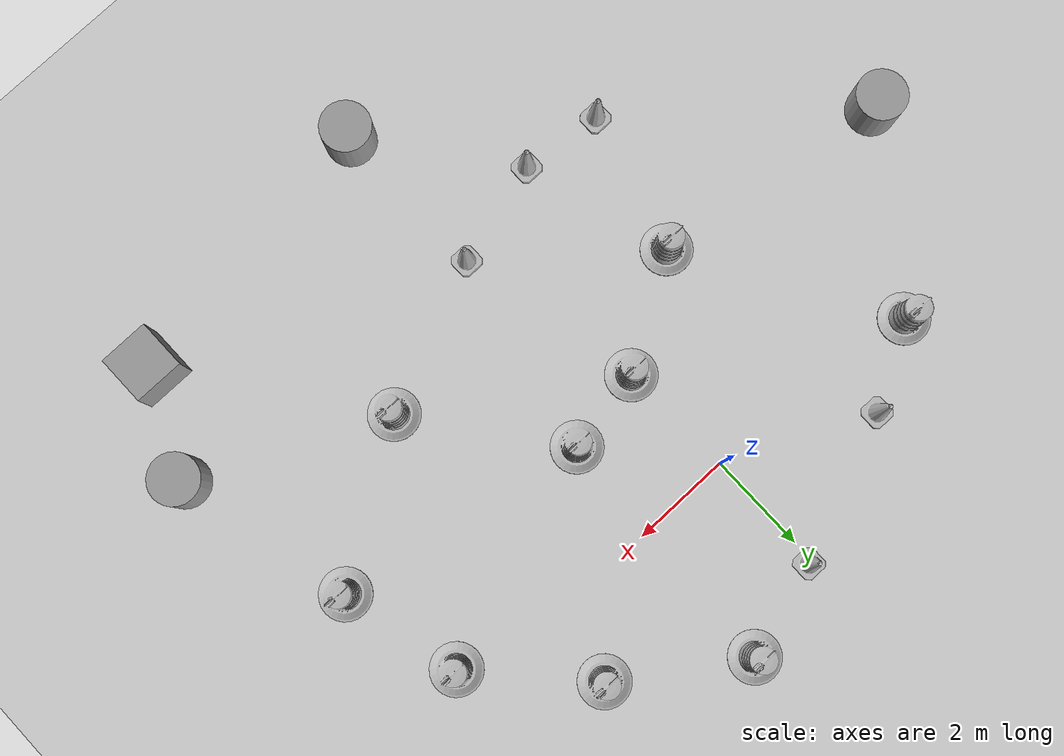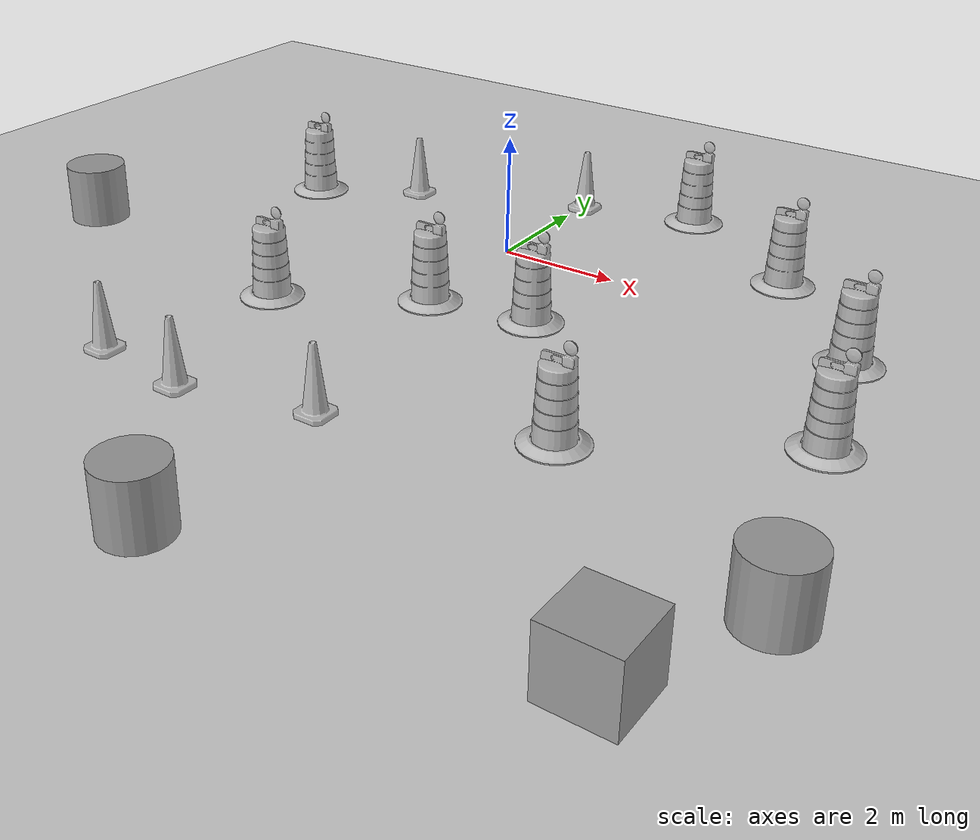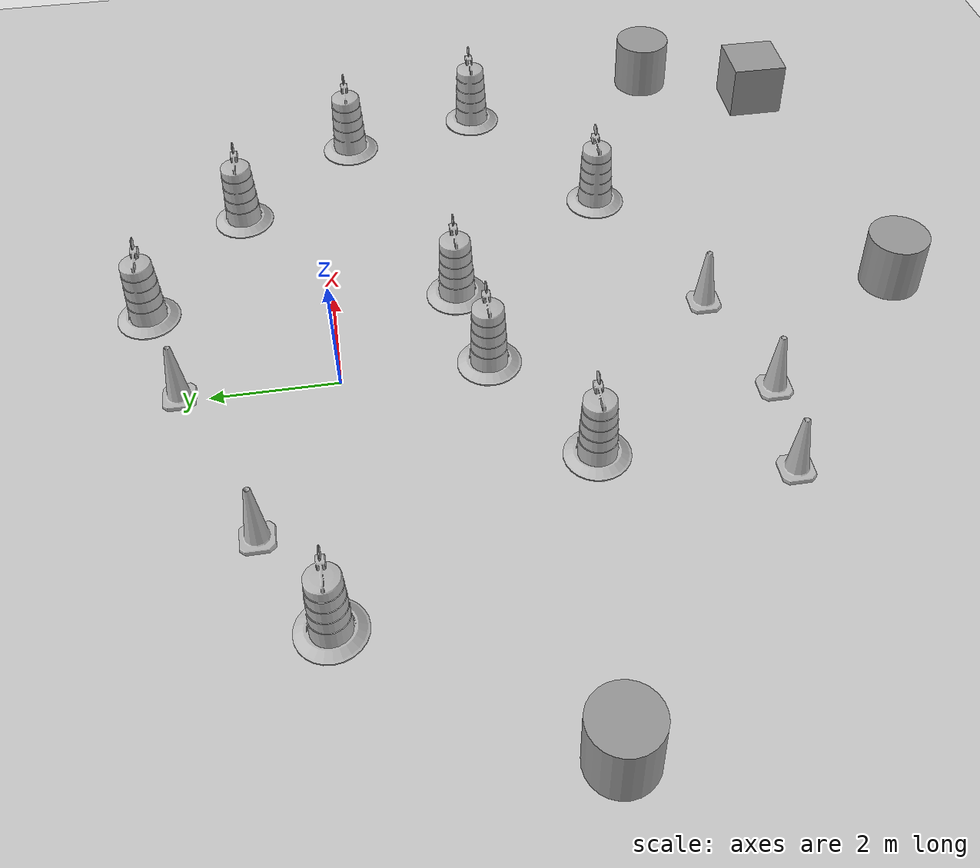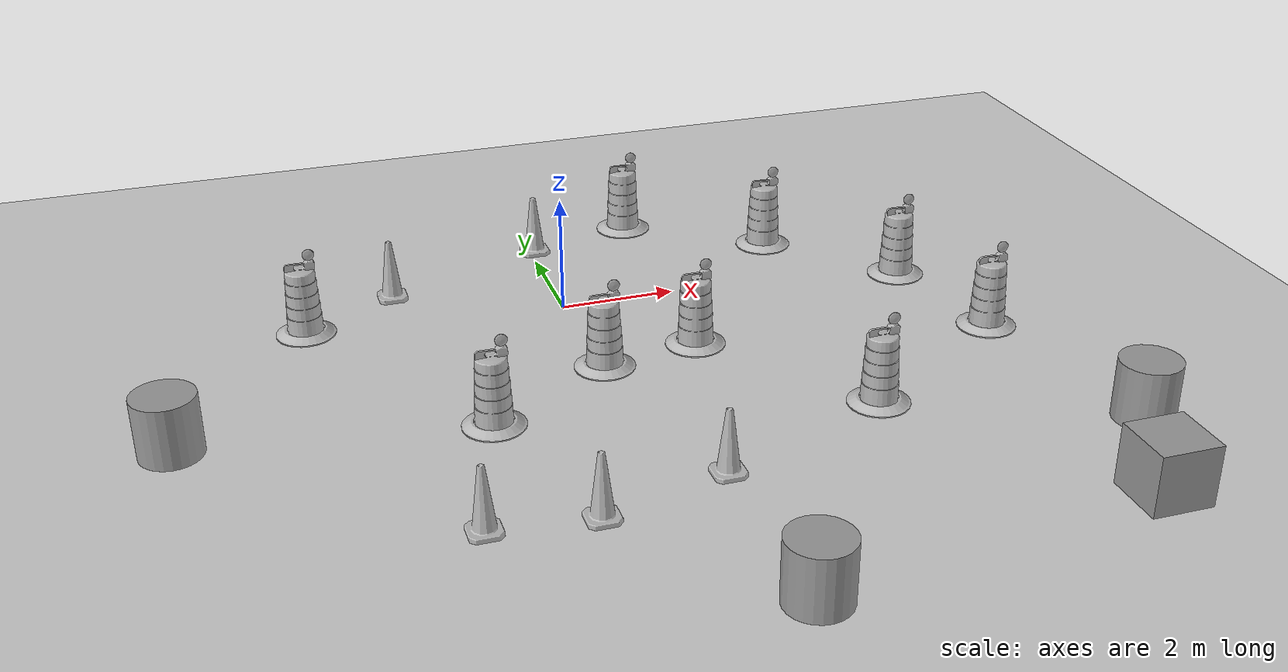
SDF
<sdf version="1.7">
 <world name="default">
  <light name="sun" type="directional">
   <pose>0 0 10 0 -0 0</pose>
   <diffuse>0.8 0.8 0.8 1</diffuse>
   <specular>0.2 0.2 0.2 1</specular>
   <attenuation>
    <range>1000</range>
    <constant>0.9</constant>
    <linear>0.01</linear>
    <quadratic>0.001</quadratic>
   </attenuation>
   <direction>-0.5 0.1 -0.9</direction>
   <spot><inner_angle>0</inner_angle><outer_angle>0</outer_angle><falloff>0</falloff></spot>
  </light>
  <model name="ground_plane">
   <static>1</static>
   <link name="link">
    <collision name="collision">
     <geometry><plane><normal>0 0 1</normal><size>100 100</size></plane></geometry>
     <surface>
      <contact><collide_bitmask>65535</collide_bitmask></contact>
      <friction><ode><mu>100</mu><mu2>50</mu2></ode></friction>
     </surface>
    </collision>
    <visual name="visual">
     <cast_shadows>0</cast_shadows>
     <geometry><plane><normal>0 0 1</normal><size>100 100</size></plane></geometry>
     <material>
      <script><uri>file://media/materials/scripts/gazebo.material</uri><name>Gazebo/Grey</name></script>
     </material>
    </visual>
   </link>
  </model>
  <gravity>0 0 -9.8</gravity>
  <magnetic_field>6e-06 2.3e-05 -4.2e-05</magnetic_field>
  <atmosphere type="adiabatic"/>
  <physics type="ode">
   <max_step_size>0.001</max_step_size>
   <real_time_factor>1</real_time_factor>
   <real_time_update_rate>1000</real_time_update_rate>
  </physics>
  <scene><ambient>0.4 0.4 0.4 1</ambient><background>0.7 0.7 0.7 1</background><shadows>1</shadows></scene>
  <audio><device>default</device></audio>
  <spherical_coordinates>
   <surface_model>EARTH_WGS84</surface_model>
   <latitude_deg>0</latitude_deg>
   <longitude_deg>0</longitude_deg>
   <elevation>0</elevation>
   <heading_deg>0</heading_deg>
  </spherical_coordinates>
  <model name="Construction Cone">
   <link name="link">
    <collision name="collision">
     <geometry>
      <mesh><scale>10 10 10</scale><uri>model://construction_cone/meshes/construction_cone.dae</uri></mesh>
     </geometry>
    </collision>
    <visual name="visual">
     <geometry>
      <mesh><scale>10 10 10</scale><uri>model://construction_cone/meshes/construction_cone.dae</uri></mesh>
     </geometry>
    </visual>
    <inertial>
     <inertia><ixx>1</ixx><ixy>0</ixy><ixz>0</ixz><iyy>1</iyy><iyz>0</iyz><izz>1</izz></inertia>
     <mass>1</mass>
    </inertial>
   </link>
   <pose>-2.80355 1.3064 -0 0 -1e-06 0</pose>
  </model>
  <model name="unit_cylinder_3">
   <pose>-6.80915 -2.93864 0.499994 -3e-06 -1e-06 -0</pose>
   <link name="link">
    <inertial>
     <mass>1</mass>
     <inertia><ixx>0.145833</ixx><ixy>0</ixy><ixz>0</ixz><iyy>0.145833</iyy><iyz>0</iyz><izz>0.125</izz></inertia>
    </inertial>
    <collision name="collision">
     <geometry><cylinder><radius>0.5</radius><length>1</length></cylinder></geometry>
    </collision>
    <visual name="visual">
     <geometry><cylinder><radius>0.5</radius><length>1</length></cylinder></geometry>
     <material>
      <script><name>Gazebo/Grey</name><uri>file://media/materials/scripts/gazebo.material</uri></script>
     </material>
    </visual>
   </link>
  </model>
  <model name="unit_cylinder_4">
   <pose>7.53799 -6.51764 0.499994 -3e-06 -1e-06 -0</pose>
   <link name="link">
    <inertial>
     <mass>1</mass>
     <inertia><ixx>0.145833</ixx><ixy>0</ixy><ixz>0</ixz><iyy>0.145833</iyy><iyz>0</iyz><izz>0.125</izz></inertia>
    </inertial>
    <collision name="collision">
     <geometry><cylinder><radius>0.5</radius><length>1</length></cylinder></geometry>
    </collision>
    <visual name="visual">
     <geometry><cylinder><radius>0.5</radius><length>1</length></cylinder></geometry>
     <material>
      <script><name>Gazebo/Grey</name><uri>file://media/materials/scripts/gazebo.material</uri></script>
     </material>
    </visual>
   </link>
  </model>
  <model name="unit_box_5">
   <pose>6.5729 -8.51439 0.499995 -1e-05 0 0</pose>
   <link name="link">
    <inertial>
     <mass>1</mass>
     <inertia>
      <ixx>0.166667</ixx>
      <ixy>0</ixy>
      <ixz>0</ixz>
      <iyy>0.166667</iyy>
      <iyz>0</iyz>
      <izz>0.166667</izz>
     </inertia>
    </inertial>
    <collision name="collision"><geometry><box><size>1 1 1</size></box></geometry></collision>
    <visual name="visual">
     <geometry><box><size>1 1 1</size></box></geometry>
     <material>
      <script><name>Gazebo/Grey</name><uri>file://media/materials/scripts/gazebo.material</uri></script>
     </material>
    </visual>
   </link>
  </model>
  <model name="unit_cylinder_5">
   <pose>0.903719 -9.27646 0.499994 -4e-06 -3e-06 -0</pose>
   <link name="link">
    <inertial>
     <mass>1</mass>
     <inertia><ixx>0.145833</ixx><ixy>0</ixy><ixz>0</ixz><iyy>0.145833</iyy><iyz>0</iyz><izz>0.125</izz></inertia>
    </inertial>
    <collision name="collision">
     <geometry><cylinder><radius>0.5</radius><length>1</length></cylinder></geometry>
    </collision>
    <visual name="visual">
     <geometry><cylinder><radius>0.5</radius><length>1</length></cylinder></geometry>
     <material>
      <script><name>Gazebo/Grey</name><uri>file://media/materials/scripts/gazebo.material</uri></script>
     </material>
    </visual>
   </link>
  </model>
  <model name="Construction Cone_clone_0">
   <link name="link">
    <collision name="collision">
     <geometry>
      <mesh><scale>10 10 10</scale><uri>model://construction_cone/meshes/construction_cone.dae</uri></mesh>
     </geometry>
    </collision>
    <visual name="visual">
     <geometry>
      <mesh><scale>10 10 10</scale><uri>model://construction_cone/meshes/construction_cone.dae</uri></mesh>
     </geometry>
    </visual>
    <inertial>
     <inertia><ixx>1</ixx><ixy>0</ixy><ixz>0</ixz><iyy>1</iyy><iyz>0</iyz><izz>1</izz></inertia>
     <mass>1</mass>
    </inertial>
   </link>
   <pose>0.08782 2.45308 -0 0 -0 0</pose>
  </model>
  <model name="Construction Barrel">
   <link name="link">
    <inertial>
     <pose>0 0 0.4 0 -0 0</pose>
     <mass>500</mass>
     <inertia><ixx>51.2096</ixx><iyy>51.2096</iyy><izz>25</izz><ixy>0</ixy><ixz>0</ixz><iyz>0</iyz></inertia>
    </inertial>
    <collision name="collision">
     <geometry><mesh><uri>model://construction_barrel/meshes/construction_barrel.dae</uri></mesh></geometry>
    </collision>
    <visual name="visual">
     <geometry><mesh><uri>model://construction_barrel/meshes/construction_barrel.dae</uri></mesh></geometry>
    </visual>
   </link>
   <pose>0.07625 -2.34128 0 0 0 -0.000483</pose>
  </model>
  <model name="Construction Barrel_clone">
   <link name="link">
    <inertial>
     <pose>0 0 0.4 0 -0 0</pose>
     <mass>500</mass>
     <inertia><ixx>51.2096</ixx><iyy>51.2096</iyy><izz>25</izz><ixy>0</ixy><ixz>0</ixz><iyz>0</iyz></inertia>
    </inertial>
    <collision name="collision">
     <geometry><mesh><uri>model://construction_barrel/meshes/construction_barrel.dae</uri></mesh></geometry>
    </collision>
    <visual name="visual">
     <geometry><mesh><uri>model://construction_barrel/meshes/construction_barrel.dae</uri></mesh></geometry>
    </visual>
   </link>
   <pose>-2.06441 -3.63361 -1e-06 4e-06 -2e-06 -4.2e-05</pose>
  </model>
  <model name="Construction Barrel_clone_0">
   <link name="link">
    <inertial>
     <pose>0 0 0.4 0 -0 0</pose>
     <mass>500</mass>
     <inertia><ixx>51.2096</ixx><iyy>51.2096</iyy><izz>25</izz><ixy>0</ixy><ixz>0</ixz><iyz>0</iyz></inertia>
    </inertial>
    <collision name="collision">
     <geometry><mesh><uri>model://construction_barrel/meshes/construction_barrel.dae</uri></mesh></geometry>
    </collision>
    <visual name="visual">
     <geometry><mesh><uri>model://construction_barrel/meshes/construction_barrel.dae</uri></mesh></geometry>
    </visual>
   </link>
   <pose>-4.43512 0.381782 -0 0 -0 -3.4e-05</pose>
  </model>
  <model name="Construction Barrel_clone_1">
   <link name="link">
    <inertial>
     <pose>0 0 0.4 0 -0 0</pose>
     <mass>500</mass>
     <inertia><ixx>51.2096</ixx><iyy>51.2096</iyy><izz>25</izz><ixy>0</ixy><ixz>0</ixz><iyz>0</iyz></inertia>
    </inertial>
    <collision name="collision">
     <geometry><mesh><uri>model://construction_barrel/meshes/construction_barrel.dae</uri></mesh></geometry>
    </collision>
    <visual name="visual">
     <geometry><mesh><uri>model://construction_barrel/meshes/construction_barrel.dae</uri></mesh></geometry>
    </visual>
   </link>
   <pose>1.75007 -2.04444 1e-06 3e-06 2e-06 -4.9e-05</pose>
  </model>
  <model name="Construction Barrel_clone_2">
   <link name="link">
    <inertial>
     <pose>0 0 0.4 0 -0 0</pose>
     <mass>500</mass>
     <inertia><ixx>51.2096</ixx><iyy>51.2096</iyy><izz>25</izz><ixy>0</ixy><ixz>0</ixz><iyz>0</iyz></inertia>
    </inertial>
    <collision name="collision">
     <geometry><mesh><uri>model://construction_barrel/meshes/construction_barrel.dae</uri></mesh></geometry>
    </collision>
    <visual name="visual">
     <geometry><mesh><uri>model://construction_barrel/meshes/construction_barrel.dae</uri></mesh></geometry>
    </visual>
   </link>
   <pose>3.84115 -4.82069 -1e-06 3e-06 7e-06 -3.9e-05</pose>
  </model>
  <model name="Construction Barrel_clone_3">
   <link name="link">
    <inertial>
     <pose>0 0 0.4 0 -0 0</pose>
     <mass>500</mass>
     <inertia><ixx>51.2096</ixx><iyy>51.2096</iyy><izz>25</izz><ixy>0</ixy><ixz>0</ixz><iyz>0</iyz></inertia>
    </inertial>
    <collision name="collision">
     <geometry><mesh><uri>model://construction_barrel/meshes/construction_barrel.dae</uri></mesh></geometry>
    </collision>
    <visual name="visual">
     <geometry><mesh><uri>model://construction_barrel/meshes/construction_barrel.dae</uri></mesh></geometry>
    </visual>
   </link>
   <pose>4.32466 1.44532 -2e-06 1e-06 8e-06 -2.7e-05</pose>
  </model>
  <model name="Construction Barrel_clone_4">
   <link name="link">
    <inertial>
     <pose>0 0 0.4 0 -0 0</pose>
     <mass>500</mass>
     <inertia><ixx>51.2096</ixx><iyy>51.2096</iyy><izz>25</izz><ixy>0</ixy><ixz>0</ixz><iyz>0</iyz></inertia>
    </inertial>
    <collision name="collision">
     <geometry><mesh><uri>model://construction_barrel/meshes/construction_barrel.dae</uri></mesh></geometry>
    </collision>
    <visual name="visual">
     <geometry><mesh><uri>model://construction_barrel/meshes/construction_barrel.dae</uri></mesh></geometry>
    </visual>
   </link>
   <pose>1.99989 2.99994 -0 0 -0 -4.1e-05</pose>
  </model>
  <model name="Construction Cone_clone_clone">
   <link name="link">
    <collision name="collision">
     <geometry>
      <mesh><scale>10 10 10</scale><uri>model://construction_cone/meshes/construction_cone.dae</uri></mesh>
     </geometry>
    </collision>
    <visual name="visual">
     <geometry>
      <mesh><scale>10 10 10</scale><uri>model://construction_cone/meshes/construction_cone.dae</uri></mesh>
     </geometry>
    </visual>
    <inertial>
     <inertia><ixx>1</ixx><ixy>0</ixy><ixz>0</ixz><iyy>1</iyy><iyz>0</iyz><izz>1</izz></inertia>
     <mass>1</mass>
    </inertial>
   </link>
   <pose>0.87059 -6.0472 -0 0 -0 0</pose>
  </model>
  <model name="Construction Cone_clone_clone_0">
   <link name="link">
    <collision name="collision">
     <geometry>
      <mesh><scale>10 10 10</scale><uri>model://construction_cone/meshes/construction_cone.dae</uri></mesh>
     </geometry>
    </collision>
    <visual name="visual">
     <geometry>
      <mesh><scale>10 10 10</scale><uri>model://construction_cone/meshes/construction_cone.dae</uri></mesh>
     </geometry>
    </visual>
    <inertial>
     <inertia><ixx>1</ixx><ixy>0</ixy><ixz>0</ixz><iyy>1</iyy><iyz>0</iyz><izz>1</izz></inertia>
     <mass>1</mass>
    </inertial>
   </link>
   <pose>-1.1996 -6.6066 -0 0 -0 0</pose>
  </model>
  <model name="Construction Cone_clone_clone_1">
   <link name="link">
    <collision name="collision">
     <geometry>
      <mesh><scale>10 10 10</scale><uri>model://construction_cone/meshes/construction_cone.dae</uri></mesh>
     </geometry>
    </collision>
    <visual name="visual">
     <geometry>
      <mesh><scale>10 10 10</scale><uri>model://construction_cone/meshes/construction_cone.dae</uri></mesh>
     </geometry>
    </visual>
    <inertial>
     <inertia><ixx>1</ixx><ixy>0</ixy><ixz>0</ixz><iyy>1</iyy><iyz>0</iyz><izz>1</izz></inertia>
     <mass>1</mass>
    </inertial>
   </link>
   <pose>-2.83079 -6.42031 -6e-06 2e-06 -0 0</pose>
  </model>
  <model name="Construction Barrel_clone_3_clone">
   <link name="link">
    <inertial>
     <pose>0 0 0.4 0 -0 0</pose>
     <mass>500</mass>
     <inertia><ixx>51.2096</ixx><iyy>51.2096</iyy><izz>25</izz><ixy>0</ixy><ixz>0</ixz><iyz>0</iyz></inertia>
    </inertial>
    <collision name="collision">
     <geometry><mesh><uri>model://construction_barrel/meshes/construction_barrel.dae</uri></mesh></geometry>
    </collision>
    <visual name="visual">
     <geometry><mesh><uri>model://construction_barrel/meshes/construction_barrel.dae</uri></mesh></geometry>
    </visual>
   </link>
   <pose>6.16134 -0.560515 -0 0 -0 -4.1e-05</pose>
  </model>
  <model name="Construction Barrel_clone_3_clone_0">
   <link name="link">
    <inertial>
     <pose>0 0 0.4 0 -0 0</pose>
     <mass>500</mass>
     <inertia><ixx>51.2096</ixx><iyy>51.2096</iyy><izz>25</izz><ixy>0</ixy><ixz>0</ixz><iyz>0</iyz></inertia>
    </inertial>
    <collision name="collision">
     <geometry><mesh><uri>model://construction_barrel/meshes/construction_barrel.dae</uri></mesh></geometry>
    </collision>
    <visual name="visual">
     <geometry><mesh><uri>model://construction_barrel/meshes/construction_barrel.dae</uri></mesh></geometry>
    </visual>
   </link>
   <pose>6.73951 -2.96009 -0 0 -0 -4e-05</pose>
  </model>
 </world>
</sdf>
